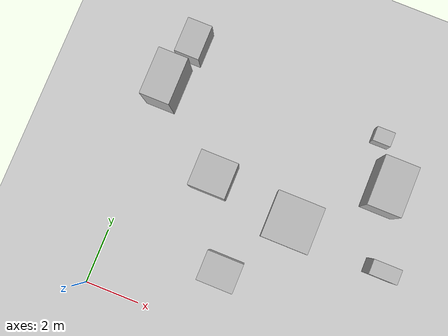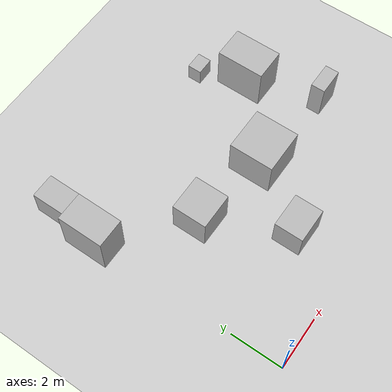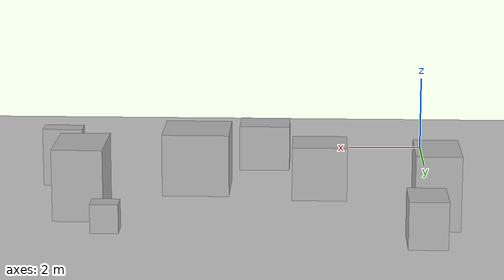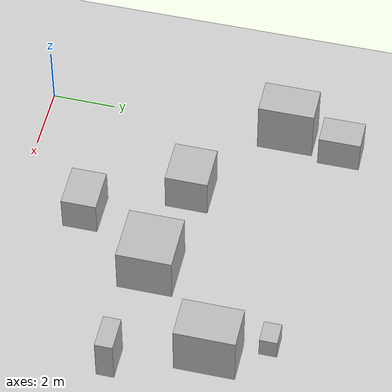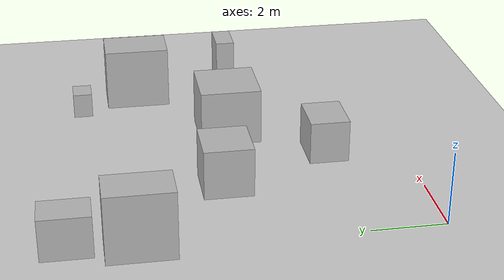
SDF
<?xml version="1.0" ?>
<sdf version="1.5">
  <world name="default">
    <include>
      <uri>model://sun</uri>
    </include>
    <include>
      <uri>model://ground_plane</uri>
    </include>

    <model name="obstacle_0">
      <pose>6.01 4.69 0.8 0 0 0</pose>
      <static>true</static>
      <link name="link">
        <collision name="collision">
          <geometry>
            <box>
              <size>1.71 1.7 1.59</size>
            </box>
          </geometry>
        </collision>
        <visual name="visual">
          <geometry>
            <box>
              <size>1.71 1.7 1.59</size>
            </box>
          </geometry>
        </visual>
      </link>
    </model>

    <model name="obstacle_1">
      <pose>2.85 5.2 0.69 0 0 0</pose>
      <static>true</static>
      <link name="link">
        <collision name="collision">
          <geometry>
            <box>
              <size>1.39 1.33 1.37</size>
            </box>
          </geometry>
        </collision>
        <visual name="visual">
          <geometry>
            <box>
              <size>1.39 1.33 1.37</size>
            </box>
          </geometry>
        </visual>
      </link>
    </model>

    <model name="obstacle_2">
      <pose>8.71 7.09 0.89 0 0 0</pose>
      <static>true</static>
      <link name="link">
        <collision name="collision">
          <geometry>
            <box>
              <size>1.24 1.84 1.78</size>
            </box>
          </geometry>
        </collision>
        <visual name="visual">
          <geometry>
            <box>
              <size>1.24 1.84 1.78</size>
            </box>
          </geometry>
        </visual>
      </link>
    </model>

    <model name="obstacle_3">
      <pose>9.53 4.3 0.75 0 0 0</pose>
      <static>true</static>
      <link name="link">
        <collision name="collision">
          <geometry>
            <box>
              <size>1.03 0.54 1.5</size>
            </box>
          </geometry>
        </collision>
        <visual name="visual">
          <geometry>
            <box>
              <size>1.03 0.54 1.5</size>
            </box>
          </geometry>
        </visual>
      </link>
    </model>

    <model name="obstacle_4">
      <pose>0.03 7.68 0.92 0 0 0</pose>
      <static>true</static>
      <link name="link">
        <collision name="collision">
          <geometry>
            <box>
              <size>1.1 1.75 1.83</size>
            </box>
          </geometry>
        </collision>
        <visual name="visual">
          <geometry>
            <box>
              <size>1.1 1.75 1.83</size>
            </box>
          </geometry>
        </visual>
      </link>
    </model>

    <model name="obstacle_5">
      <pose>0.34 9.44 0.57 0 0 0</pose>
      <static>true</static>
      <link name="link">
        <collision name="collision">
          <geometry>
            <box>
              <size>0.93 1.31 1.14</size>
            </box>
          </geometry>
        </collision>
        <visual name="visual">
          <geometry>
            <box>
              <size>0.93 1.31 1.14</size>
            </box>
          </geometry>
        </visual>
      </link>
    </model>

    <model name="obstacle_6">
      <pose>4.33 2.19 0.6 0 0 0</pose>
      <static>true</static>
      <link name="link">
        <collision name="collision">
          <geometry>
            <box>
              <size>1.34 1.09 1.2</size>
            </box>
          </geometry>
        </collision>
        <visual name="visual">
          <geometry>
            <box>
              <size>1.34 1.09 1.2</size>
            </box>
          </geometry>
        </visual>
      </link>
    </model>

    <model name="obstacle_7">
      <pose>7.95 8.77 0.36 0 0 0</pose>
      <static>true</static>
      <link name="link">
        <collision name="collision">
          <geometry>
            <box>
              <size>0.68 0.54 0.71</size>
            </box>
          </geometry>
        </collision>
        <visual name="visual">
          <geometry>
            <box>
              <size>0.68 0.54 0.71</size>
            </box>
          </geometry>
        </visual>
      </link>
    </model>

    <plugin
      name="bounding_box_plugin"
      filename="/home/andrea/ros_packages_aggiuntivi/devel/lib/libbounding_box_plugin.so"
    />

    </world>
</sdf>
